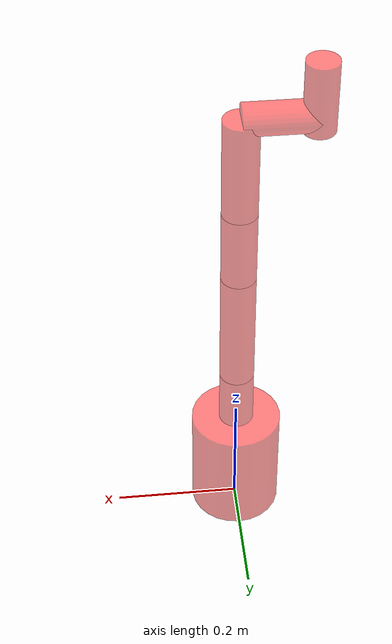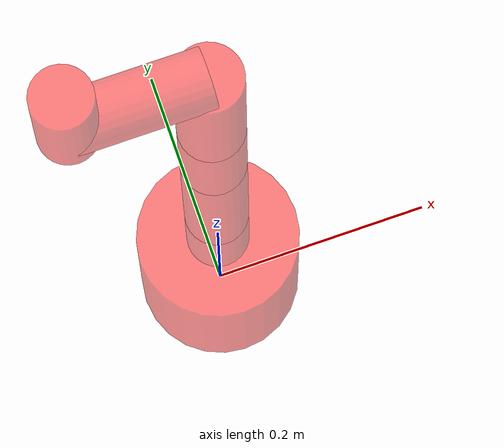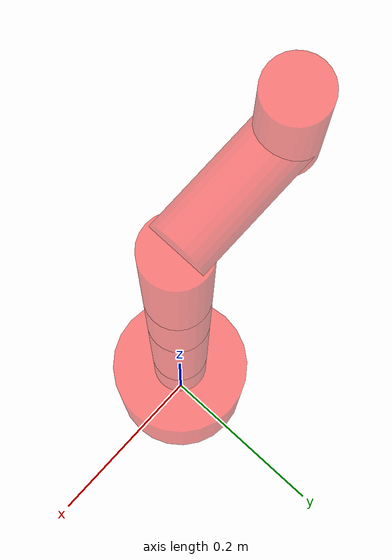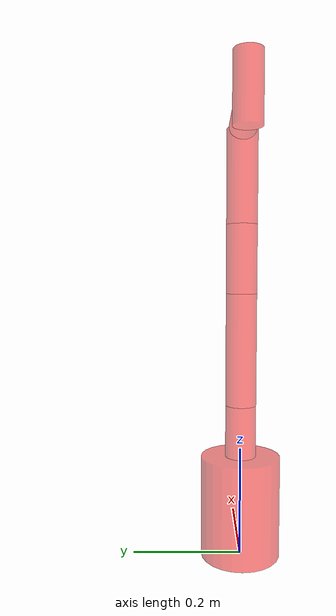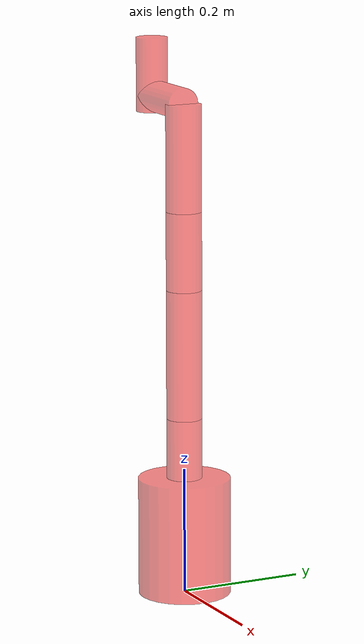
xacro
<?xml version="1.0"?>
<robot name="yantra_robot" xmlns:xacro="http://www.ros.org/wiki/xacro">

	<xacro:property name="m0" value="10.8791766"/>
	<xacro:property name="m1" value="0.9647109"/>
	<xacro:property name="m2" value="2.0600634"/>
	<xacro:property name="m3" value="1.246083"/>
	<xacro:property name="m4" value="1.6781958"/>
	<xacro:property name="m51" value="1.1254986"/>
	<xacro:property name="m52" value="0.83315028"/>

	<xacro:property name="r0" value="0.073"/>
	<xacro:property name="r1" value="0.028"/>
	<xacro:property name="r2" value="0.028"/>
	<xacro:property name="r3" value="0.028"/>
	<xacro:property name="r4" value="0.028"/>
	<xacro:property name="r51" value="0.025"/>
	<xacro:property name="r52" value="0.025"/>

	<xacro:property name="h0" value="0.187"/>
	<xacro:property name="h1" value="0.096"/>
	<xacro:property name="h2" value="0.205"/>
	<xacro:property name="h3" value="0.124"/>
	<xacro:property name="h4" value="0.167"/>
	<xacro:property name="h51" value="0.112"/>
	<xacro:property name="h52" value="0.116"/>

	<material name="red_trans">
		<color rgba="1 0 0 0.5"/>
	</material>

	<xacro:macro name="link" params="i x y z r p m rad ht rot_axis">
		<link name="link_${i}">
			<visual>
				<origin rpy="${r} ${p} 0" xyz="${x} ${y} ${z}"/>
				<geometry>
					<cylinder length="${ht}" radius="${rad}"/>
				</geometry>
				<material name="red_trans"/>
			</visual>
			<collision>
				<origin rpy="${r} ${p} 0" xyz="${x} ${y} ${z}"/>
				<geometry>
					<cylinder length="${ht}" radius="${rad}"/>
				</geometry>
			</collision>
			<inertial>
				<origin rpy="${r} ${p} 0" xyz="${x} ${y} ${z}"/>
				<mass value="${m}"/>

				<xacro:if value="${rot_axis == 'x'}">
					<inertia iyy="${m*ht*ht/3}" ixy="0" ixz="0" ixx="0" iyz="0" izz="${m*ht*ht/3}"/>
				</xacro:if>
				<xacro:if value="${rot_axis == 'z'}">
					<inertia ixx="${m*(3*rad*rad + ht*ht)/12}" ixy="0" ixz="0" iyy="${m*(3*rad*rad + ht*ht)/12}" iyz="0" izz="${m*rad*rad/2}"/>
				</xacro:if>
				<xacro:if value="${rot_axis == 'n'}">
					<inertia ixx="0" ixy="0" ixz="0" iyy="0" iyz="0" izz="0"/>
				</xacro:if>
			</inertial>
		</link>
		<gazebo reference="link_${i}">
			<mu1 value="30.0"/>
			<mu2 value="30.0"/>
			<kp value="1000000.0"/>
			<kd value="100.0"/>
			<material>Gazebo/BlackTransparent</material>
		</gazebo>
	</xacro:macro>

	<xacro:macro name="link_joints" params="plink clink jtype x y z rx ry rz rr pp yy efrt">
		<xacro:if value="${jtype == 'f'}">
		<joint name="joint_${plink}_${clink}" type="fixed">
			<parent link="link_${plink}"/>
			<child link="link_${clink}"/>
			<origin xyz="${x} ${y} ${z}" rpy="${rr} ${pp} ${yy}"/>
		</joint>
		</xacro:if>

		<xacro:if value="${jtype == 'r'}">
		<!--joint name="joint_${plink}_${clink}" type="revolute"-->
		<joint name="joint_${plink}_${clink}" type="continuous">
			<parent link="link_${plink}"/>
			<child link="link_${clink}"/>
			<origin xyz="${x} ${y} ${z}" rpy="${rr} ${pp} ${yy}"/>
			<axis xyz="${rx} ${ry} ${rz}"/>
			<limit effort="${efrt}"  upper="100" lower="100" velocity="20000000"/>
		</joint>
		</xacro:if>
	</xacro:macro>

	<xacro:macro name="joint_transmission" params="i j">
		<transmission name="transmission_${i}_${j}">
			<type>transmission_interface/SimpleTransmission</type>
			<actuator name="actuator_${i}_${j}">
				<mechanicalReduction>1</mechanicalReduction>
			</actuator>
			<joint name="joint_${i}_${j}">
					<hardwareInterface>hardware_interface/EffortJointInterface</hardwareInterface>
			</joint>
		</transmission>
	</xacro:macro>

	<link name="world"/>
	<link name="tcp"/>
	<joint name="world_link_0" type="fixed">
		<parent link="world"/>
		<child link="link_0"/>
	</joint>

	<xacro:link i="0" r="0" p="0" x="0" y="0" z="${h0/2}" m="${m0}" rad="${r0}" ht="${h0}" rot_axis="z"/>
	<xacro:link i="1" r="0" p="0" x="0" y="0" z="${h1/2}" m="${m1}" rad="${r1}" ht="${h1}" rot_axis="z"/>
	<xacro:link i="2" r="${-pi/2}" p="0" x="0" y="${h2/2}" z="0" m="${m2}" rad="${r2}" ht="${h2}" rot_axis="x"/>
	<xacro:link i="3" r="0" p="${pi/2}" x="${h3/2}" y="0" z="0" m="${m3}" rad="${r3}" ht="${h3}" rot_axis="x"/>
	<xacro:link i="4" r="0" p="0" x="0" y="0" z="${h4/2}" m="${m4}" rad="${r4}" ht="${h4}" rot_axis="z"/>
	<xacro:link i="51" r="0" p="${pi/2}" x="${-h51/2}" y="0" z="0" m="${m51}" rad="${r51}" ht="${h51}" rot_axis="x"/>
	<xacro:link i="52" r="${pi/2}" p="0" y="${h52/2 - r51}" x="0" z="0" m="${m52}" rad="${r52}" ht="${h52}" rot_axis="n"/>

	<xacro:link_joints plink="0" clink="1" x="0" y="0" z="${h0}" rr="0" pp="0" yy="0" jtype="r" rx="0" ry="0" rz="1" efrt="400"/>
	<xacro:link_joints plink="1" clink="2" x="0" y="0" z="${h1}" rr="${pi/2}" pp="0" yy="0" jtype="r" rx="0" ry="0" rz="1" efrt="500"/>
	<xacro:link_joints plink="2" clink="3" x="0" y="${h2}" z="0" rr="0" pp="0" yy="${pi/2}" jtype="r" rx="0" ry="0" rz="1" efrt="400"/>
	<xacro:link_joints plink="3" clink="4" x="${h3}" y="0" z="0" rr="${pi/2}" pp="0" yy="${pi/2}" jtype="r" rx="0" ry="0" rz="1" efrt="50"/>
	<xacro:link_joints plink="4" clink="51" x="0" y="0" z="${h4}" rr="${pi/2}" pp="0" yy="${pi}" jtype="r" rx="0" ry="0" rz="1" efrt="50"/>
	<xacro:link_joints plink="51" clink="52" x="${-h51}" y="0" z="0" rr="0" pp="0" yy="0" jtype="f" rx="0" ry="0" rz="0" efrt="10"/>

	<xacro:joint_transmission i="0" j="1"/>
	<xacro:joint_transmission i="1" j="2"/>
	<xacro:joint_transmission i="2" j="3"/>
	<xacro:joint_transmission i="3" j="4"/>
	<xacro:joint_transmission i="4" j="51"/>

	<joint name="tcp_joint" type="fixed">
		<parent link="link_52"/>
		<child link="tcp"/>
		<origin xyz="0 0 0" rpy="0 0 0"/>
	</joint>

	<gazebo>
		<plugin name="gazebo_ros_control" filename="libgazebo_ros_control.so">
			<robotNamespace>/yantra</robotNamespace>
		</plugin>
	</gazebo>
</robot>
